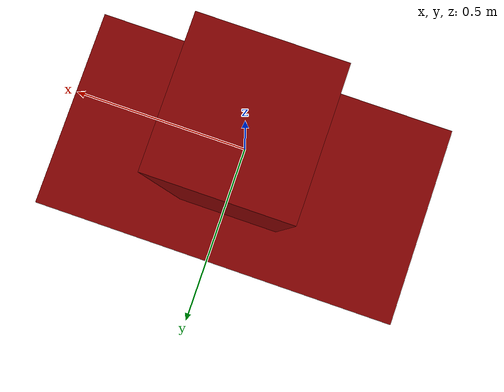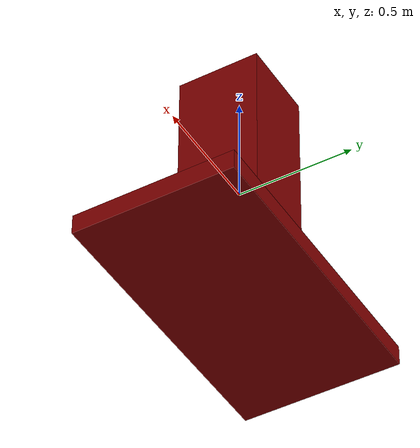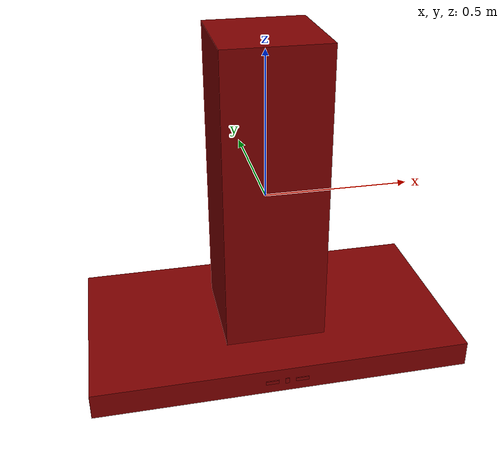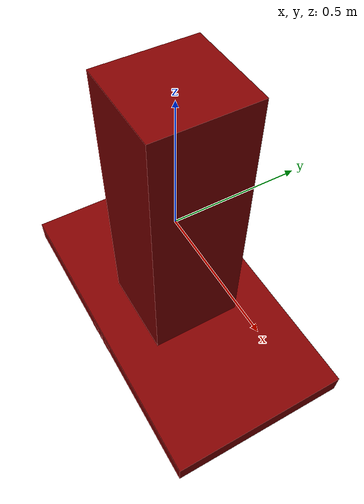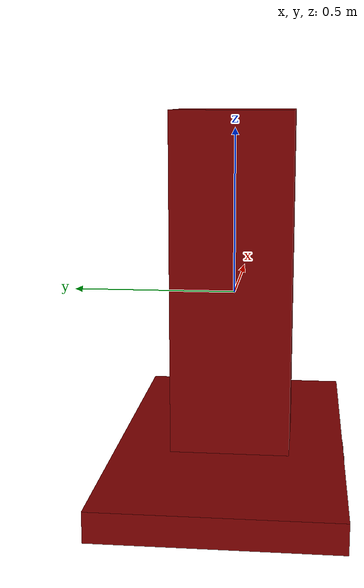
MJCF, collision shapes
<?xml version='1.0' encoding='UTF-8'?>
<mujoco model="model">
  <compiler angle="radian"/>
  <asset>
    <mesh file="visuals/Body001.obj" name="Body001_vis"/>
    <mesh file="visuals/Button001.obj" name="Button001_vis"/>
    <mesh file="visuals/Button002.obj" name="Button002_vis"/>
    <mesh file="visuals/Button003.obj" name="Button003_vis"/>
    <texture file="visuals/T_BC001.png" name="Body001_material" type="2d"/>
    <material name="Body001_material" rgba="1 1 1 1.0" texture="Body001_material" shininess="1" specular="1"/>
    <texture file="visuals/T_BC001.png" name="Button001_material" type="2d"/>
    <material name="Button001_material" rgba="1 1 1 1.0" texture="Button001_material" shininess="0.141421377658844" specular="0.3103448502657381"/>
    <texture file="visuals/T_BC001.png" name="Button002_material" type="2d"/>
    <material name="Button002_material" rgba="1 1 1 1.0" texture="Button002_material" shininess="0.141421377658844" specular="0.3103448502657381"/>
    <texture file="visuals/T_BC001.png" name="Button003_material" type="2d"/>
    <material name="Button003_material" rgba="1 1 1 1.0" texture="Button003_material" shininess="0.141421377658844" specular="0.3103448502657381"/>
  </asset>
  <default>
    <default class="visual">
      <geom conaffinity="0" contype="0" group="1" type="mesh"/>
    </default>
    <default class="collision">
      <geom group="0" rgba="0.5 0 0 0.5"/>
    </default>
    <default class="spawn">
      <geom group="0" rgba="1 1 1 0.5" contype="0" conaffinity="0"/>
      <site group="0" rgba="1 1 1 0.5"/>
    </default>
    <default class="region">
      <geom group="1" conaffinity="0" contype="0" rgba="0 1 0 0"/>
    </default>
  </default>
  <worldbody>
    <body>
      <body name="object">
        <geom mesh="Body001_vis" type="mesh" solimp="0.998 0.998 0.001" solref="0.001 1" density="100" friction="0.95 0.3 0.1" class="visual" material="Body001_material"/>
        <geom class="collision" type="box" pos="0.000000 0.002957 -0.508652" size="0.6347796320915222 0.346395343542099 0.04388433322310448" quat="1.0 0.0 0.0 0.0"/>
        <geom class="collision" type="box" pos="0.000000 0.000225 0.041080" size="0.17218053340911865 0.1794510930776596 0.5134961605072021" quat="1.0 0.0 0.0 0.0"/>
        <body name="Button001">
          <joint axis="0.0 1.0 0.0" pos="-0.050493 -0.347430 -0.509334" limited="true" name="Button001_joint" range="0.0 0.002" type="slide" damping="1" frictionloss="1" armature=".01" stiffness="0.05"/>
          <geom mesh="Button001_vis" type="mesh" solimp="0.998 0.998 0.001" solref="0.001 1" density="100" friction="0.95 0.3 0.1" class="visual" material="Button001_material"/>
          <geom class="collision" type="box" pos="-0.050596 -0.347587 -0.509225" size="0.021772533655166626 0.0017649864312261343 0.0058954209089279175" quat="1.0 0.0 0.0 0.0"/>
        </body>
        <body name="Button002">
          <joint axis="0.0 1.0 0.0" pos="0.000195 -0.347279 -0.509487" limited="true" name="Button002_joint" range="0.0 0.002" type="slide" damping="1" frictionloss="1" armature=".01" stiffness="0.05"/>
          <geom mesh="Button002_vis" type="mesh" solimp="0.998 0.998 0.001" solref="0.001 1" density="100" friction="0.95 0.3 0.1" class="visual" material="Button002_material"/>
          <geom class="collision" type="box" pos="0.000195 -0.347279 -0.509487" size="0.006683302111923695 0.0014560507843270898 0.009603694081306458" quat="1.0 0.0 0.0 0.0"/>
        </body>
        <body name="Button003">
          <joint axis="0.0 1.0 0.0" pos="0.050872 -0.347430 -0.509334" limited="true" name="Button003_joint" range="0.0 0.002" type="slide" damping="1" frictionloss="1" armature=".01" stiffness="0.05"/>
          <geom mesh="Button003_vis" type="mesh" solimp="0.998 0.998 0.001" solref="0.001 1" density="100" friction="0.95 0.3 0.1" class="visual" material="Button003_material"/>
          <geom class="collision" type="box" pos="0.050837 -0.347587 -0.509225" size="0.021772533655166626 0.0017649864312261343 0.0058954209089279175" quat="1.0 0.0 0.0 0.0"/>
        </body>
        <geom class="region" name="reg_main" type="box" pos="0.00019449999999998635 -0.0008164999999999978 0.0" size="0.6327045 0.3484205 0.554879"/>
      </body>
    </body>
  </worldbody>
  <actuator>
    <motor name="Button001_joint_actuator" joint="Button001_joint" gear="0.5"/>
    <motor name="Button002_joint_actuator" joint="Button002_joint" gear="0.1"/>
    <motor name="Button003_joint_actuator" joint="Button003_joint" gear="0.5"/>
  </actuator>
</mujoco>
